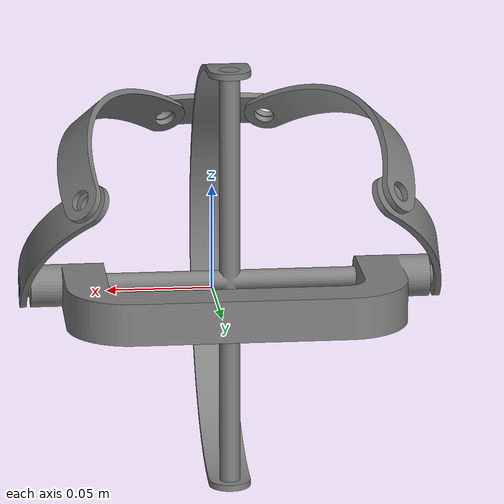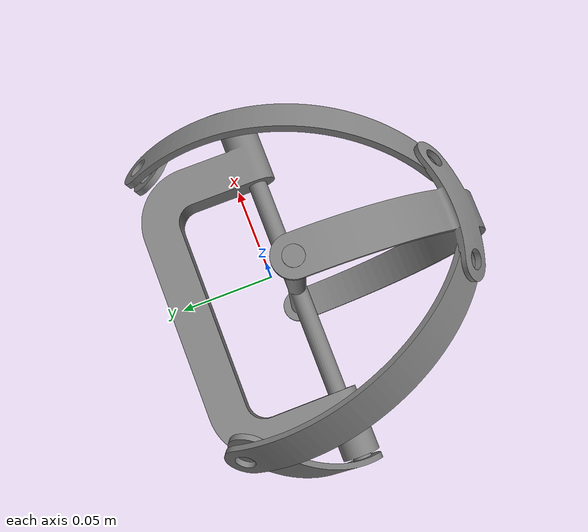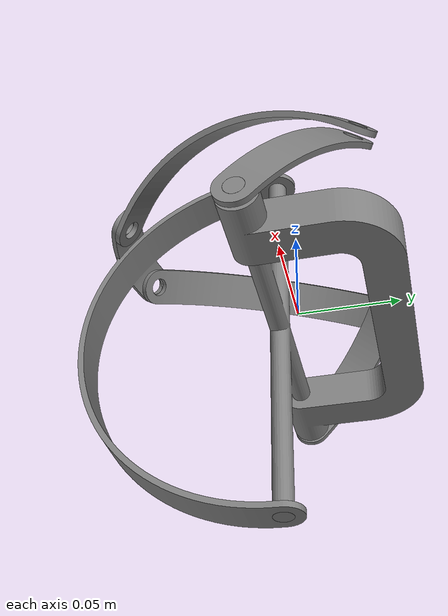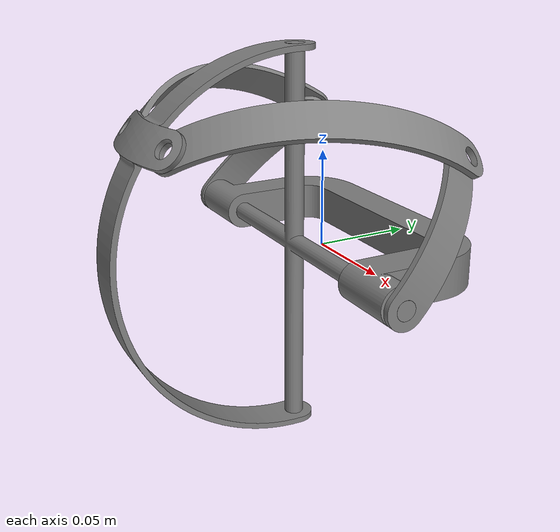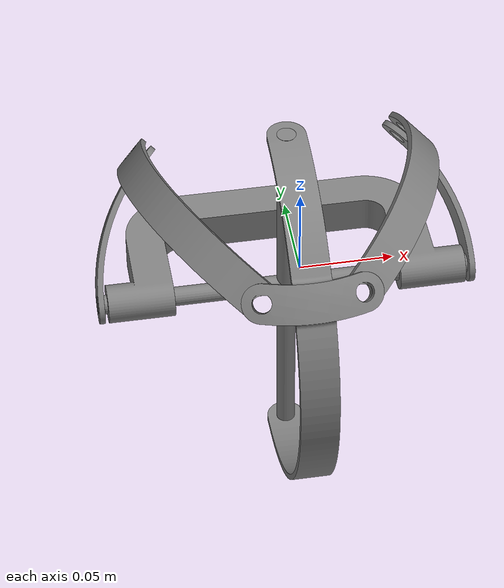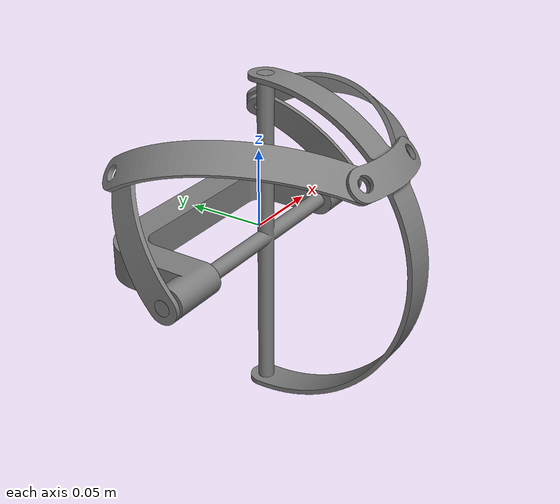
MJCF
<mujoco model="lool">
  <compiler angle="radian" meshdir="meshes/"/>
  <option timestep="0.00002" />
  <asset>
    <mesh name="base_link" file="base_link.stl" scale="0.001 0.001 0.001"/>
    <mesh name="crest1" file="crest1.stl" scale="0.001 0.001 0.001"/>
    <mesh name="main1" file="main1.stl" scale="0.001 0.001 0.001"/>
    <mesh name="pipka1" file="pipka1.stl" scale="0.001 0.001 0.001"/>
    <mesh name="left_small1" file="left_small1.stl" scale="0.001 0.001 0.001"/>
    <mesh name="left_link1" file="left_link1.stl" scale="0.001 0.001 0.001"/>
    <mesh name="right_link1" file="right_link1.stl" scale="0.001 0.001 0.001"/>
  </asset>

  <worldbody>
    <body name="base_link">
      <inertial pos="-0.00947379 0.0276663 0" quat="0 0.707107 0 0.707107" mass="0.104892" diaginertia="0.000405584 0.000356156 5.64567e-05"/>
      <geom type="mesh" contype="0" conaffinity="0" group="1" density="0" mesh="base_link"/>
      <geom type="mesh" mesh="base_link"/>
      <body name="crest1" pos="-0.113948 -0.032467 -0.01">
        <inertial pos="0.104474 0.0213171 0.01" quat="0.707107 0 0 0.707107" mass="0.0312205" diaginertia="0.000109765 5.75047e-05 5.26525e-05"/>
        <joint name="Revolute_17" pos="0 .021 .01" axis="-1 0 0"/>
        <geom pos="0.113948 0.032467 0.01" quat="1 0 0 0" type="mesh" contype="0" conaffinity="0" group="1" density="0" mesh="crest1"/>
        <geom pos="0.113948 0.032467 0.01" quat="1 0 0 0" type="mesh" mesh="crest1"/>
        <body name="main1" pos="0.104474 0.021317 0.113">
          <inertial pos="7.13372e-07 -0.0655986 -0.0931912" quat="0.99984 0.0178688 1.00947e-06 7.04172e-06" mass="0.0231773" diaginertia="0.000137886 0.00011774 2.38892e-05"/>
          <joint name="Revolute_18" pos="0 0 0" axis="0 0 1"/>

          <joint name="Revolute_28" pos=".025 -.07 -.045" axis="0.3 -1.5 1.2"/>

          <joint name="Revolute_29" pos="-.025 -.07 -.045" axis="-.2 -1.5 1.2"/>

          <geom pos="0.009474 0.01115 -0.103" type="mesh" contype="0" conaffinity="0" group="1" density="0" mesh="main1"/>
          <geom pos="0.009474 0.01115 -0.103" type="mesh" mesh="main1"/>
        </body>
        <body name="pipka1" pos="0.004474 0.021317 0.01">
          <inertial pos="0.012308 0.0256207 0.0274747" quat="0.91254 -0.359459 0.181515 -0.0715008" mass="0.00525424" diaginertia="3.65243e-06 3.52979e-06 2.37462e-07"/>
          <joint name="Revolute_19" pos="0 0 0" axis="-1 0 0"/>
          <geom pos="0.109474 0.01115 0" type="mesh" contype="0" conaffinity="0" group="1" density="0" mesh="pipka1"/>
          <geom pos="0.109474 0.01115 0" type="mesh" mesh="pipka1"/>
          <body name="left_link1" pos="0.028403 0.050877 0.054559">
            <inertial pos="0.0121681 -0.0664584 0.0164823" quat="0.618402 0.678698 -0.127418 0.375118" mass="0.00950586" diaginertia="1.87459e-05 1.8245e-05 1.14443e-06"/>
            <joint name="Revolute_21" pos="0 0 0" axis="0.707107 -0.482246 -0.517145"/>
            <geom pos="0.081071 -0.039727 -0.054559" quat="1 0 0 0" type="mesh" contype="0" conaffinity="0" group="1" density="0" mesh="left_link1"/>
            <geom pos="0.081071 -0.039727 -0.054559" quat="1 0 0 0" type="mesh" mesh="left_link1"/>
          </body>
        </body>
        <body name="left_small1" pos="0.204474 0.021317 0.01">
          <inertial pos="-0.0123076 0.0256207 0.0274747" quat="0.91254 -0.359459 -0.181515 0.0715008" mass="0.00525424" diaginertia="3.65243e-06 3.52979e-06 2.37462e-07"/>
          <joint name="Revolute_20" pos="0 0 0" axis="1 0 0"/>
          <geom pos="-0.090526 0.01115 0" type="mesh" contype="0" conaffinity="0" group="1" density="0" mesh="left_small1"/>
          <geom pos="-0.090526 0.01115 0" type="mesh" mesh="left_small1"/>
          <body name="right_link1" pos="-0.028402 0.050877 0.054559">
            <inertial pos="-0.0124751 -0.0666674 0.0162582" quat="0.618402 0.678698 0.127418 -0.375118" mass="0.00950586" diaginertia="1.87459e-05 1.8245e-05 1.14443e-06"/>
            <joint name="Revolute_22" pos="0 0 0" axis="-0.707107 -0.482246 -0.517145"/>
            <geom pos="-0.062124 -0.039727 -0.054559" quat="1 0 0 0" type="mesh" contype="0" conaffinity="0" group="1" density="0" mesh="right_link1"/>
            <geom pos="-0.062124 -0.039727 -0.054559" quat="1 0 0 0" type="mesh" mesh="right_link1"/>
          </body>
        </body>
      </body>
    </body>
  </worldbody>
    <actuator>
        <motor gear=".1" joint="Revolute_18" name="18"/>
        <motor gear=".1" joint="Revolute_19" name="19"/>
        <motor gear=".1" joint="Revolute_21" name="21"/>
        <motor gear=".1" joint="Revolute_20" name="20"/>
        <motor gear=".1" joint="Revolute_22" name="22"/>
    </actuator>

   <equality>

        <connect name="kinematic_link" active="true" body1="main1" body2="right_link1" anchor=".025 -.07 -.045" />
        <connect name="kinematic_link1" active="true" body1="main1" body2="left_link1" anchor="-.025 -.07 -.045" />
        <connect name="kinematic_link2" active="true" body1="main1" body2="crest1" anchor="0 0 0" />
    </equality>

     <contact>
        <exclude body1="base_link" body2="crest1"/>
        <exclude body1="base_link" body2="main1"/>
        <exclude body1="base_link" body2="pipka1"/>
        <exclude body1="base_link" body2="left_small1"/>
        <exclude body1="base_link" body2="left_link1"/>
        <exclude body1="base_link" body2="right_link1"/>

        <exclude body1="crest1" body2="main1"/>
        <exclude body1="crest1" body2="pipka1"/>
        <exclude body1="crest1" body2="left_small1"/>
        <exclude body1="crest1" body2="left_link1"/>
        <exclude body1="crest1" body2="right_link1"/>

        <exclude body1="main1" body2="crest1"/>
        <exclude body1="main1" body2="pipka1"/>
        <exclude body1="main1" body2="left_small1"/>
        <exclude body1="main1" body2="left_link1"/>
        <exclude body1="main1" body2="right_link1"/>

        <exclude body1="pipka1" body2="crest1"/>
        <exclude body1="pipka1" body2="main1"/>
        <exclude body1="pipka1" body2="left_small1"/>
        <exclude body1="pipka1" body2="left_link1"/>
        <exclude body1="pipka1" body2="right_link1"/>

        <exclude body1="left_small1" body2="crest1"/>
        <exclude body1="left_small1" body2="main1"/>
        <exclude body1="left_small1" body2="pipka1"/>
        <exclude body1="left_small1" body2="left_link1"/>
        <exclude body1="left_small1" body2="right_link1"/>

        <exclude body1="left_link1" body2="crest1"/>
        <exclude body1="left_link1" body2="main1"/>
        <exclude body1="left_link1" body2="pipka1"/>
        <exclude body1="left_link1" body2="left_small1"/>
        <exclude body1="left_link1" body2="right_link1"/>

        <exclude body1="right_link1" body2="crest1"/>
        <exclude body1="right_link1" body2="main1"/>
        <exclude body1="right_link1" body2="pipka1"/>
        <exclude body1="right_link1" body2="left_small1"/>
        <exclude body1="right_link1" body2="left_link1"/>

    </contact>
</mujoco>
